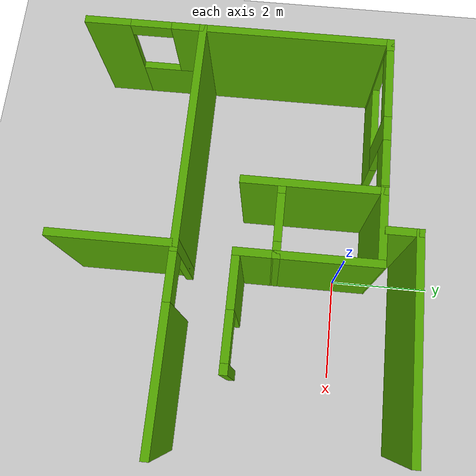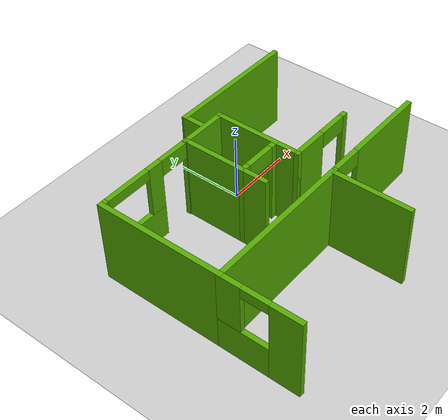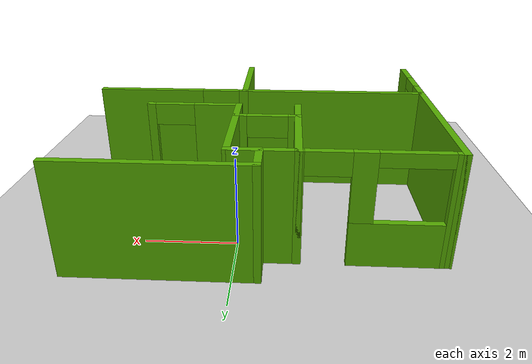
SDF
<sdf version="1.6">
 <world name="default">
  <model name="ground_plane">
   <static>1</static>
   <link name="link">
    <collision name="collision">
     <geometry><plane><normal>0 0 1</normal><size>100 100</size></plane></geometry>
     <surface><friction><ode><mu>100</mu><mu2>50</mu2></ode></friction></surface>
    </collision>
    <visual name="visual">
     <cast_shadows>0</cast_shadows>
     <geometry><plane><normal>0 0 1</normal><size>100 100</size></plane></geometry>
     <material>
      <script><uri>file://media/materials/scripts/gazebo.material</uri><name>Gazebo/Grey</name></script>
     </material>
    </visual>
   </link>
  </model>
  <model name="1floorHouse">
   <link name="Wall_295">
    <pose>-8.69021 0.434996 0 0 -0 1.5708</pose>
    <visual name="Wall_295_Visual_0">
     <pose>-0.748437 0 1.25 0 -0 0</pose>
     <geometry><box><size>0.903127 0.15 2.5</size></box></geometry>
     <material>
      <script><uri>file://media/materials/scripts/gazebo.material</uri><name>Gazebo/Grey</name></script>
      <ambient>0.333333 0.666667 0 1</ambient>
      <diffuse>0.7 0.7 0.7 1</diffuse>
      <specular>0.01 0.01 0.01 1</specular>
      <emissive>0 0 0 1</emissive>
     </material>
    </visual>
    <visual name="Wall_295_Visual_1">
     <pose>0.451563 0 0.5 0 -0 0</pose>
     <geometry><box><size>1.49687 0.15 1</size></box></geometry>
     <material>
      <script><uri>file://media/materials/scripts/gazebo.material</uri><name>Gazebo/Grey</name></script>
      <ambient>0.333333 0.666667 0 1</ambient>
      <diffuse>0.7 0.7 0.7 1</diffuse>
      <specular>0.01 0.01 0.01 1</specular>
      <emissive>0 0 0 1</emissive>
     </material>
    </visual>
    <visual name="Wall_295_Visual_2">
     <pose>0.851563 0 1.75 0 -0 0</pose>
     <geometry><box><size>0.696873 0.15 1.5</size></box></geometry>
     <material>
      <script><uri>file://media/materials/scripts/gazebo.material</uri><name>Gazebo/Grey</name></script>
      <ambient>0.333333 0.666667 0 1</ambient>
      <diffuse>0.7 0.7 0.7 1</diffuse>
      <specular>0.01 0.01 0.01 1</specular>
      <emissive>0 0 0 1</emissive>
     </material>
    </visual>
    <visual name="Wall_295_Visual_3">
     <pose>0.103127 0 2.35 0 -0 0</pose>
     <geometry><box><size>0.8 0.15 0.3</size></box></geometry>
     <material>
      <script><uri>file://media/materials/scripts/gazebo.material</uri><name>Gazebo/Grey</name></script>
      <ambient>0.333333 0.666667 0 1</ambient>
      <diffuse>0.7 0.7 0.7 1</diffuse>
      <specular>0.01 0.01 0.01 1</specular>
      <emissive>0 0 0 1</emissive>
     </material>
    </visual>
    <collision name="Wall_295_Collision_0">
     <pose>-0.748437 0 1.25 0 -0 0</pose>
     <geometry><box><size>0.903127 0.15 2.5</size></box></geometry>
     <surface>
      <friction>
       <ode><mu>1</mu><mu2>1</mu2><fdir1>0 0 0</fdir1><slip1>0</slip1><slip2>0</slip2></ode>
       <torsional>
        <coefficient>1</coefficient>
        <patch_radius>0</patch_radius>
        <surface_radius>0</surface_radius>
        <use_patch_radius>1</use_patch_radius>
        <ode><slip>0</slip></ode>
       </torsional>
      </friction>
      <bounce><restitution_coefficient>0</restitution_coefficient><threshold>1e+06</threshold></bounce>
      <contact>
       <collide_without_contact>0</collide_without_contact>
       <collide_without_contact_bitmask>1</collide_without_contact_bitmask>
       <collide_bitmask>1</collide_bitmask>
       <ode>
        <soft_cfm>0</soft_cfm>
        <soft_erp>0.2</soft_erp>
        <kp>1e+13</kp>
        <kd>1</kd>
        <max_vel>0.01</max_vel>
        <min_depth>0</min_depth>
       </ode>
       <bullet>
        <split_impulse>1</split_impulse>
        <split_impulse_penetration_threshold>-0.01</split_impulse_penetration_threshold>
        <soft_cfm>0</soft_cfm>
        <soft_erp>0.2</soft_erp>
        <kp>1e+13</kp>
        <kd>1</kd>
       </bullet>
      </contact>
     </surface>
    </collision>
    <collision name="Wall_295_Collision_1">
     <pose>0.451563 0 0.5 0 -0 0</pose>
     <geometry><box><size>1.49687 0.15 1</size></box></geometry>
     <surface>
      <friction>
       <ode><mu>1</mu><mu2>1</mu2><fdir1>0 0 0</fdir1><slip1>0</slip1><slip2>0</slip2></ode>
       <torsional>
        <coefficient>1</coefficient>
        <patch_radius>0</patch_radius>
        <surface_radius>0</surface_radius>
        <use_patch_radius>1</use_patch_radius>
        <ode><slip>0</slip></ode>
       </torsional>
      </friction>
      <bounce><restitution_coefficient>0</restitution_coefficient><threshold>1e+06</threshold></bounce>
      <contact>
       <collide_without_contact>0</collide_without_contact>
       <collide_without_contact_bitmask>1</collide_without_contact_bitmask>
       <collide_bitmask>1</collide_bitmask>
       <ode>
        <soft_cfm>0</soft_cfm>
        <soft_erp>0.2</soft_erp>
        <kp>1e+13</kp>
        <kd>1</kd>
        <max_vel>0.01</max_vel>
        <min_depth>0</min_depth>
       </ode>
       <bullet>
        <split_impulse>1</split_impulse>
        <split_impulse_penetration_threshold>-0.01</split_impulse_penetration_threshold>
        <soft_cfm>0</soft_cfm>
        <soft_erp>0.2</soft_erp>
        <kp>1e+13</kp>
        <kd>1</kd>
       </bullet>
      </contact>
     </surface>
    </collision>
    <collision name="Wall_295_Collision_2">
     <pose>0.851563 0 1.75 0 -0 0</pose>
     <geometry><box><size>0.696873 0.15 1.5</size></box></geometry>
     <surface>
      <friction>
       <ode><mu>1</mu><mu2>1</mu2><fdir1>0 0 0</fdir1><slip1>0</slip1><slip2>0</slip2></ode>
       <torsional>
        <coefficient>1</coefficient>
        <patch_radius>0</patch_radius>
        <surface_radius>0</surface_radius>
        <use_patch_radius>1</use_patch_radius>
        <ode><slip>0</slip></ode>
       </torsional>
      </friction>
      <bounce><restitution_coefficient>0</restitution_coefficient><threshold>1e+06</threshold></bounce>
      <contact>
       <collide_without_contact>0</collide_without_contact>
       <collide_without_contact_bitmask>1</collide_without_contact_bitmask>
       <collide_bitmask>1</collide_bitmask>
       <ode>
        <soft_cfm>0</soft_cfm>
        <soft_erp>0.2</soft_erp>
        <kp>1e+13</kp>
        <kd>1</kd>
        <max_vel>0.01</max_vel>
        <min_depth>0</min_depth>
       </ode>
       <bullet>
        <split_impulse>1</split_impulse>
        <split_impulse_penetration_threshold>-0.01</split_impulse_penetration_threshold>
        <soft_cfm>0</soft_cfm>
        <soft_erp>0.2</soft_erp>
        <kp>1e+13</kp>
        <kd>1</kd>
       </bullet>
      </contact>
     </surface>
    </collision>
    <collision name="Wall_295_Collision_3">
     <pose>0.103127 0 2.35 0 -0 0</pose>
     <geometry><box><size>0.8 0.15 0.3</size></box></geometry>
     <surface>
      <friction>
       <ode><mu>1</mu><mu2>1</mu2><fdir1>0 0 0</fdir1><slip1>0</slip1><slip2>0</slip2></ode>
       <torsional>
        <coefficient>1</coefficient>
        <patch_radius>0</patch_radius>
        <surface_radius>0</surface_radius>
        <use_patch_radius>1</use_patch_radius>
        <ode><slip>0</slip></ode>
       </torsional>
      </friction>
      <bounce><restitution_coefficient>0</restitution_coefficient><threshold>1e+06</threshold></bounce>
      <contact>
       <collide_without_contact>0</collide_without_contact>
       <collide_without_contact_bitmask>1</collide_without_contact_bitmask>
       <collide_bitmask>1</collide_bitmask>
       <ode>
        <soft_cfm>0</soft_cfm>
        <soft_erp>0.2</soft_erp>
        <kp>1e+13</kp>
        <kd>1</kd>
        <max_vel>0.01</max_vel>
        <min_depth>0</min_depth>
       </ode>
       <bullet>
        <split_impulse>1</split_impulse>
        <split_impulse_penetration_threshold>-0.01</split_impulse_penetration_threshold>
        <soft_cfm>0</soft_cfm>
        <soft_erp>0.2</soft_erp>
        <kp>1e+13</kp>
        <kd>1</kd>
       </bullet>
      </contact>
     </surface>
    </collision>
   </link>
   <link name="Wall_296">
    <pose>-6.5152 1.56 0 0 -0 0</pose>
    <visual name="Wall_296_Visual">
     <pose>0 0 1.25 0 -0 0</pose>
     <geometry><box><size>4.5 0.15 2.5</size></box></geometry>
     <material>
      <script><uri>file://media/materials/scripts/gazebo.material</uri><name>Gazebo/Grey</name></script>
      <ambient>0.333333 0.666667 0 1</ambient>
      <diffuse>0.7 0.7 0.7 1</diffuse>
      <specular>0.01 0.01 0.01 1</specular>
      <emissive>0 0 0 1</emissive>
     </material>
    </visual>
    <collision name="Wall_296_Collision">
     <pose>0 0 1.25 0 -0 0</pose>
     <geometry><box><size>4.5 0.15 2.5</size></box></geometry>
     <surface>
      <friction>
       <ode><mu>1</mu><mu2>1</mu2><fdir1>0 0 0</fdir1><slip1>0</slip1><slip2>0</slip2></ode>
       <torsional>
        <coefficient>1</coefficient>
        <patch_radius>0</patch_radius>
        <surface_radius>0</surface_radius>
        <use_patch_radius>1</use_patch_radius>
        <ode><slip>0</slip></ode>
       </torsional>
      </friction>
      <bounce><restitution_coefficient>0</restitution_coefficient><threshold>1e+06</threshold></bounce>
      <contact>
       <collide_without_contact>0</collide_without_contact>
       <collide_without_contact_bitmask>1</collide_without_contact_bitmask>
       <collide_bitmask>1</collide_bitmask>
       <ode>
        <soft_cfm>0</soft_cfm>
        <soft_erp>0.2</soft_erp>
        <kp>1e+13</kp>
        <kd>1</kd>
        <max_vel>0.01</max_vel>
        <min_depth>0</min_depth>
       </ode>
       <bullet>
        <split_impulse>1</split_impulse>
        <split_impulse_penetration_threshold>-0.01</split_impulse_penetration_threshold>
        <soft_cfm>0</soft_cfm>
        <soft_erp>0.2</soft_erp>
        <kp>1e+13</kp>
        <kd>1</kd>
       </bullet>
      </contact>
     </surface>
    </collision>
   </link>
   <link name="Wall_297">
    <pose>-4.34021 0.434996 0 0 0 -1.5708</pose>
    <visual name="Wall_297_Visual">
     <pose>0 0 1.25 0 -0 0</pose>
     <geometry><box><size>2.4 0.15 2.5</size></box></geometry>
     <material>
      <script><uri>file://media/materials/scripts/gazebo.material</uri><name>Gazebo/Grey</name></script>
      <ambient>0.333333 0.666667 0 1</ambient>
      <diffuse>0.7 0.7 0.7 1</diffuse>
      <specular>0.01 0.01 0.01 1</specular>
      <emissive>0 0 0 1</emissive>
     </material>
    </visual>
    <collision name="Wall_297_Collision">
     <pose>0 0 1.25 0 -0 0</pose>
     <geometry><box><size>2.4 0.15 2.5</size></box></geometry>
     <surface>
      <friction>
       <ode><mu>1</mu><mu2>1</mu2><fdir1>0 0 0</fdir1><slip1>0</slip1><slip2>0</slip2></ode>
       <torsional>
        <coefficient>1</coefficient>
        <patch_radius>0</patch_radius>
        <surface_radius>0</surface_radius>
        <use_patch_radius>1</use_patch_radius>
        <ode><slip>0</slip></ode>
       </torsional>
      </friction>
      <bounce><restitution_coefficient>0</restitution_coefficient><threshold>1e+06</threshold></bounce>
      <contact>
       <collide_without_contact>0</collide_without_contact>
       <collide_without_contact_bitmask>1</collide_without_contact_bitmask>
       <collide_bitmask>1</collide_bitmask>
       <ode>
        <soft_cfm>0</soft_cfm>
        <soft_erp>0.2</soft_erp>
        <kp>1e+13</kp>
        <kd>1</kd>
        <max_vel>0.01</max_vel>
        <min_depth>0</min_depth>
       </ode>
       <bullet>
        <split_impulse>1</split_impulse>
        <split_impulse_penetration_threshold>-0.01</split_impulse_penetration_threshold>
        <soft_cfm>0</soft_cfm>
        <soft_erp>0.2</soft_erp>
        <kp>1e+13</kp>
        <kd>1</kd>
       </bullet>
      </contact>
     </surface>
    </collision>
   </link>
   <link name="Wall_299">
    <pose>-2.565 1.56 0 0 -0 0</pose>
    <visual name="Wall_299_Visual_0">
     <pose>-1.73627 0 1.25 0 -0 0</pose>
     <geometry><box><size>0.227865 0.15 2.5</size></box></geometry>
     <material>
      <script><uri>file://media/materials/scripts/gazebo.material</uri><name>Gazebo/Grey</name></script>
      <ambient>0.333333 0.666667 0 1</ambient>
      <diffuse>0.7 0.7 0.7 1</diffuse>
      <specular>0.01 0.01 0.01 1</specular>
      <emissive>0 0 0 1</emissive>
     </material>
    </visual>
    <visual name="Wall_299_Visual_1">
     <pose>0.563933 0 1.25 0 -0 0</pose>
     <geometry><box><size>2.57254 0.15 2.5</size></box></geometry>
     <material>
      <script><uri>file://media/materials/scripts/gazebo.material</uri><name>Gazebo/Grey</name></script>
      <ambient>0.333333 0.666667 0 1</ambient>
      <diffuse>0.7 0.7 0.7 1</diffuse>
      <specular>0.01 0.01 0.01 1</specular>
      <emissive>0 0 0 1</emissive>
     </material>
    </visual>
    <visual name="Wall_299_Visual_2">
     <pose>-1.17234 0 2.25 0 -0 0</pose>
     <geometry><box><size>0.9 0.15 0.5</size></box></geometry>
     <material>
      <script><uri>file://media/materials/scripts/gazebo.material</uri><name>Gazebo/Grey</name></script>
      <ambient>0.333333 0.666667 0 1</ambient>
      <diffuse>0.7 0.7 0.7 1</diffuse>
      <specular>0.01 0.01 0.01 1</specular>
      <emissive>0 0 0 1</emissive>
     </material>
    </visual>
    <collision name="Wall_299_Collision_0">
     <pose>-1.73627 0 1.25 0 -0 0</pose>
     <geometry><box><size>0.227865 0.15 2.5</size></box></geometry>
     <surface>
      <friction>
       <ode><mu>1</mu><mu2>1</mu2><fdir1>0 0 0</fdir1><slip1>0</slip1><slip2>0</slip2></ode>
       <torsional>
        <coefficient>1</coefficient>
        <patch_radius>0</patch_radius>
        <surface_radius>0</surface_radius>
        <use_patch_radius>1</use_patch_radius>
        <ode><slip>0</slip></ode>
       </torsional>
      </friction>
      <bounce><restitution_coefficient>0</restitution_coefficient><threshold>1e+06</threshold></bounce>
      <contact>
       <collide_without_contact>0</collide_without_contact>
       <collide_without_contact_bitmask>1</collide_without_contact_bitmask>
       <collide_bitmask>1</collide_bitmask>
       <ode>
        <soft_cfm>0</soft_cfm>
        <soft_erp>0.2</soft_erp>
        <kp>1e+13</kp>
        <kd>1</kd>
        <max_vel>0.01</max_vel>
        <min_depth>0</min_depth>
       </ode>
       <bullet>
        <split_impulse>1</split_impulse>
        <split_impulse_penetration_threshold>-0.01</split_impulse_penetration_threshold>
        <soft_cfm>0</soft_cfm>
        <soft_erp>0.2</soft_erp>
        <kp>1e+13</kp>
        <kd>1</kd>
       </bullet>
      </contact>
     </surface>
    </collision>
    <collision name="Wall_299_Collision_1">
     <pose>0.563933 0 1.25 0 -0 0</pose>
     <geometry><box><size>2.57254 0.15 2.5</size></box></geometry>
     <surface>
      <friction>
       <ode><mu>1</mu><mu2>1</mu2><fdir1>0 0 0</fdir1><slip1>0</slip1><slip2>0</slip2></ode>
       <torsional>
        <coefficient>1</coefficient>
        <patch_radius>0</patch_radius>
        <surface_radius>0</surface_radius>
        <use_patch_radius>1</use_patch_radius>
        <ode><slip>0</slip></ode>
       </torsional>
      </friction>
      <bounce><restitution_coefficient>0</restitution_coefficient><threshold>1e+06</threshold></bounce>
      <contact>
       <collide_without_contact>0</collide_without_contact>
       <collide_without_contact_bitmask>1</collide_without_contact_bitmask>
       <collide_bitmask>1</collide_bitmask>
       <ode>
        <soft_cfm>0</soft_cfm>
        <soft_erp>0.2</soft_erp>
        <kp>1e+13</kp>
        <kd>1</kd>
        <max_vel>0.01</max_vel>
        <min_depth>0</min_depth>
       </ode>
       <bullet>
        <split_impulse>1</split_impulse>
        <split_impulse_penetration_threshold>-0.01</split_impulse_penetration_threshold>
        <soft_cfm>0</soft_cfm>
        <soft_erp>0.2</soft_erp>
        <kp>1e+13</kp>
        <kd>1</kd>
       </bullet>
      </contact>
     </surface>
    </collision>
    <collision name="Wall_299_Collision_2">
     <pose>-1.17234 0 2.25 0 -0 0</pose>
     <geometry><box><size>0.9 0.15 0.5</size></box></geometry>
     <surface>
      <friction>
       <ode><mu>1</mu><mu2>1</mu2><fdir1>0 0 0</fdir1><slip1>0</slip1><slip2>0</slip2></ode>
       <torsional>
        <coefficient>1</coefficient>
        <patch_radius>0</patch_radius>
        <surface_radius>0</surface_radius>
        <use_patch_radius>1</use_patch_radius>
        <ode><slip>0</slip></ode>
       </torsional>
      </friction>
      <bounce><restitution_coefficient>0</restitution_coefficient><threshold>1e+06</threshold></bounce>
      <contact>
       <collide_without_contact>0</collide_without_contact>
       <collide_without_contact_bitmask>1</collide_without_contact_bitmask>
       <collide_bitmask>1</collide_bitmask>
       <ode>
        <soft_cfm>0</soft_cfm>
        <soft_erp>0.2</soft_erp>
        <kp>1e+13</kp>
        <kd>1</kd>
        <max_vel>0.01</max_vel>
        <min_depth>0</min_depth>
       </ode>
       <bullet>
        <split_impulse>1</split_impulse>
        <split_impulse_penetration_threshold>-0.01</split_impulse_penetration_threshold>
        <soft_cfm>0</soft_cfm>
        <soft_erp>0.2</soft_erp>
        <kp>1e+13</kp>
        <kd>1</kd>
       </bullet>
      </contact>
     </surface>
    </collision>
   </link>
   <link name="Wall_303">
    <pose>-8.69021 3.385 0 0 -0 1.5708</pose>
    <visual name="Wall_303_Visual">
     <pose>0 0 1.25 0 -0 0</pose>
     <geometry><box><size>3.8 0.15 2.5</size></box></geometry>
     <material>
      <script><uri>file://media/materials/scripts/gazebo.material</uri><name>Gazebo/Grey</name></script>
      <ambient>0.333333 0.666667 0 1</ambient>
      <diffuse>0.7 0.7 0.7 1</diffuse>
      <specular>0.01 0.01 0.01 1</specular>
      <emissive>0 0 0 1</emissive>
     </material>
    </visual>
    <collision name="Wall_303_Collision">
     <pose>0 0 1.25 0 -0 0</pose>
     <geometry><box><size>3.8 0.15 2.5</size></box></geometry>
     <surface>
      <friction>
       <ode><mu>1</mu><mu2>1</mu2><fdir1>0 0 0</fdir1><slip1>0</slip1><slip2>0</slip2></ode>
       <torsional>
        <coefficient>1</coefficient>
        <patch_radius>0</patch_radius>
        <surface_radius>0</surface_radius>
        <use_patch_radius>1</use_patch_radius>
        <ode><slip>0</slip></ode>
       </torsional>
      </friction>
      <bounce><restitution_coefficient>0</restitution_coefficient><threshold>1e+06</threshold></bounce>
      <contact>
       <collide_without_contact>0</collide_without_contact>
       <collide_without_contact_bitmask>1</collide_without_contact_bitmask>
       <collide_bitmask>1</collide_bitmask>
       <ode>
        <soft_cfm>0</soft_cfm>
        <soft_erp>0.2</soft_erp>
        <kp>1e+13</kp>
        <kd>1</kd>
        <max_vel>0.01</max_vel>
        <min_depth>0</min_depth>
       </ode>
       <bullet>
        <split_impulse>1</split_impulse>
        <split_impulse_penetration_threshold>-0.01</split_impulse_penetration_threshold>
        <soft_cfm>0</soft_cfm>
        <soft_erp>0.2</soft_erp>
        <kp>1e+13</kp>
        <kd>1</kd>
       </bullet>
      </contact>
     </surface>
    </collision>
   </link>
   <link name="Wall_304">
    <pose>-7.16521 5.21 0 0 -0 0</pose>
    <visual name="Wall_304_Visual_0">
     <pose>-1.47576 0 1.25 0 -0 0</pose>
     <geometry><box><size>0.248475 0.15 2.5</size></box></geometry>
     <material>
      <script><uri>file://media/materials/scripts/gazebo.material</uri><name>Gazebo/Grey</name></script>
      <ambient>0.333333 0.666667 0 1</ambient>
      <diffuse>0.7 0.7 0.7 1</diffuse>
      <specular>0.01 0.01 0.01 1</specular>
      <emissive>0 0 0 1</emissive>
     </material>
    </visual>
    <visual name="Wall_304_Visual_2">
     <pose>-0.414623 0 0.5 0 -0 0</pose>
     <geometry><box><size>1.8738 0.15 1</size></box></geometry>
     <material>
      <script><uri>file://media/materials/scripts/gazebo.material</uri><name>Gazebo/Grey</name></script>
      <ambient>0.333333 0.666667 0 1</ambient>
      <diffuse>0.7 0.7 0.7 1</diffuse>
      <specular>0.01 0.01 0.01 1</specular>
      <emissive>0 0 0 1</emissive>
     </material>
    </visual>
    <visual name="Wall_304_Visual_1">
     <pose>1.51114 0 1.25 0 -0 0</pose>
     <geometry><box><size>0.177722 0.15 2.5</size></box></geometry>
     <material>
      <script><uri>file://media/materials/scripts/gazebo.material</uri><name>Gazebo/Grey</name></script>
      <ambient>0.333333 0.666667 0 1</ambient>
      <diffuse>0.7 0.7 0.7 1</diffuse>
      <specular>0.01 0.01 0.01 1</specular>
      <emissive>0 0 0 1</emissive>
     </material>
    </visual>
    <visual name="Wall_304_Visual_3">
     <pose>0.285377 0 1.75 0 -0 0</pose>
     <geometry><box><size>0.473803 0.15 1.5</size></box></geometry>
     <material>
      <script><uri>file://media/materials/scripts/gazebo.material</uri><name>Gazebo/Grey</name></script>
      <ambient>0.333333 0.666667 0 1</ambient>
      <diffuse>0.7 0.7 0.7 1</diffuse>
      <specular>0.01 0.01 0.01 1</specular>
      <emissive>0 0 0 1</emissive>
     </material>
    </visual>
    <visual name="Wall_304_Visual_4">
     <pose>0.972278 0 2.25 0 -0 0</pose>
     <geometry><box><size>0.9 0.15 0.5</size></box></geometry>
     <material>
      <script><uri>file://media/materials/scripts/gazebo.material</uri><name>Gazebo/Grey</name></script>
      <ambient>0.333333 0.666667 0 1</ambient>
      <diffuse>0.7 0.7 0.7 1</diffuse>
      <specular>0.01 0.01 0.01 1</specular>
      <emissive>0 0 0 1</emissive>
     </material>
    </visual>
    <visual name="Wall_304_Visual_5">
     <pose>-0.651525 0 2.35 0 -0 0</pose>
     <geometry><box><size>1.4 0.15 0.3</size></box></geometry>
     <material>
      <script><uri>file://media/materials/scripts/gazebo.material</uri><name>Gazebo/Grey</name></script>
      <ambient>0.333333 0.666667 0 1</ambient>
      <diffuse>0.7 0.7 0.7 1</diffuse>
      <specular>0.01 0.01 0.01 1</specular>
      <emissive>0 0 0 1</emissive>
     </material>
    </visual>
    <collision name="Wall_304_Collision_0">
     <pose>-1.47576 0 1.25 0 -0 0</pose>
     <geometry><box><size>0.248475 0.15 2.5</size></box></geometry>
     <surface>
      <friction>
       <ode><mu>1</mu><mu2>1</mu2><fdir1>0 0 0</fdir1><slip1>0</slip1><slip2>0</slip2></ode>
       <torsional>
        <coefficient>1</coefficient>
        <patch_radius>0</patch_radius>
        <surface_radius>0</surface_radius>
        <use_patch_radius>1</use_patch_radius>
        <ode><slip>0</slip></ode>
       </torsional>
      </friction>
      <bounce><restitution_coefficient>0</restitution_coefficient><threshold>1e+06</threshold></bounce>
      <contact>
       <collide_without_contact>0</collide_without_contact>
       <collide_without_contact_bitmask>1</collide_without_contact_bitmask>
       <collide_bitmask>1</collide_bitmask>
       <ode>
        <soft_cfm>0</soft_cfm>
        <soft_erp>0.2</soft_erp>
        <kp>1e+13</kp>
        <kd>1</kd>
        <max_vel>0.01</max_vel>
        <min_depth>0</min_depth>
       </ode>
       <bullet>
        <split_impulse>1</split_impulse>
        <split_impulse_penetration_threshold>-0.01</split_impulse_penetration_threshold>
        <soft_cfm>0</soft_cfm>
        <soft_erp>0.2</soft_erp>
        <kp>1e+13</kp>
        <kd>1</kd>
       </bullet>
      </contact>
     </surface>
    </collision>
    <collision name="Wall_304_Collision_1">
     <pose>1.51114 0 1.25 0 -0 0</pose>
     <geometry><box><size>0.177722 0.15 2.5</size></box></geometry>
     <surface>
      <friction>
       <ode><mu>1</mu><mu2>1</mu2><fdir1>0 0 0</fdir1><slip1>0</slip1><slip2>0</slip2></ode>
       <torsional>
        <coefficient>1</coefficient>
        <patch_radius>0</patch_radius>
        <surface_radius>0</surface_radius>
        <use_patch_radius>1</use_patch_radius>
        <ode><slip>0</slip></ode>
       </torsional>
      </friction>
      <bounce><restitution_coefficient>0</restitution_coefficient><threshold>1e+06</threshold></bounce>
      <contact>
       <collide_without_contact>0</collide_without_contact>
       <collide_without_contact_bitmask>1</collide_without_contact_bitmask>
       <collide_bitmask>1</collide_bitmask>
       <ode>
        <soft_cfm>0</soft_cfm>
        <soft_erp>0.2</soft_erp>
        <kp>1e+13</kp>
        <kd>1</kd>
        <max_vel>0.01</max_vel>
        <min_depth>0</min_depth>
       </ode>
       <bullet>
        <split_impulse>1</split_impulse>
        <split_impulse_penetration_threshold>-0.01</split_impulse_penetration_threshold>
        <soft_cfm>0</soft_cfm>
        <soft_erp>0.2</soft_erp>
        <kp>1e+13</kp>
        <kd>1</kd>
       </bullet>
      </contact>
     </surface>
    </collision>
    <collision name="Wall_304_Collision_2">
     <pose>-0.414623 0 0.5 0 -0 0</pose>
     <geometry><box><size>1.8738 0.15 1</size></box></geometry>
     <surface>
      <friction>
       <ode><mu>1</mu><mu2>1</mu2><fdir1>0 0 0</fdir1><slip1>0</slip1><slip2>0</slip2></ode>
       <torsional>
        <coefficient>1</coefficient>
        <patch_radius>0</patch_radius>
        <surface_radius>0</surface_radius>
        <use_patch_radius>1</use_patch_radius>
        <ode><slip>0</slip></ode>
       </torsional>
      </friction>
      <bounce><restitution_coefficient>0</restitution_coefficient><threshold>1e+06</threshold></bounce>
      <contact>
       <collide_without_contact>0</collide_without_contact>
       <collide_without_contact_bitmask>1</collide_without_contact_bitmask>
       <collide_bitmask>1</collide_bitmask>
       <ode>
        <soft_cfm>0</soft_cfm>
        <soft_erp>0.2</soft_erp>
        <kp>1e+13</kp>
        <kd>1</kd>
        <max_vel>0.01</max_vel>
        <min_depth>0</min_depth>
       </ode>
       <bullet>
        <split_impulse>1</split_impulse>
        <split_impulse_penetration_threshold>-0.01</split_impulse_penetration_threshold>
        <soft_cfm>0</soft_cfm>
        <soft_erp>0.2</soft_erp>
        <kp>1e+13</kp>
        <kd>1</kd>
       </bullet>
      </contact>
     </surface>
    </collision>
    <collision name="Wall_304_Collision_3">
     <pose>0.285377 0 1.75 0 -0 0</pose>
     <geometry><box><size>0.473803 0.15 1.5</size></box></geometry>
     <surface>
      <friction>
       <ode><mu>1</mu><mu2>1</mu2><fdir1>0 0 0</fdir1><slip1>0</slip1><slip2>0</slip2></ode>
       <torsional>
        <coefficient>1</coefficient>
        <patch_radius>0</patch_radius>
        <surface_radius>0</surface_radius>
        <use_patch_radius>1</use_patch_radius>
        <ode><slip>0</slip></ode>
       </torsional>
      </friction>
      <bounce><restitution_coefficient>0</restitution_coefficient><threshold>1e+06</threshold></bounce>
      <contact>
       <collide_without_contact>0</collide_without_contact>
       <collide_without_contact_bitmask>1</collide_without_contact_bitmask>
       <collide_bitmask>1</collide_bitmask>
       <ode>
        <soft_cfm>0</soft_cfm>
        <soft_erp>0.2</soft_erp>
        <kp>1e+13</kp>
        <kd>1</kd>
        <max_vel>0.01</max_vel>
        <min_depth>0</min_depth>
       </ode>
       <bullet>
        <split_impulse>1</split_impulse>
        <split_impulse_penetration_threshold>-0.01</split_impulse_penetration_threshold>
        <soft_cfm>0</soft_cfm>
        <soft_erp>0.2</soft_erp>
        <kp>1e+13</kp>
        <kd>1</kd>
       </bullet>
      </contact>
     </surface>
    </collision>
    <collision name="Wall_304_Collision_4">
     <pose>0.972278 0 2.25 0 -0 0</pose>
     <geometry><box><size>0.9 0.15 0.5</size></box></geometry>
     <surface>
      <friction>
       <ode><mu>1</mu><mu2>1</mu2><fdir1>0 0 0</fdir1><slip1>0</slip1><slip2>0</slip2></ode>
       <torsional>
        <coefficient>1</coefficient>
        <patch_radius>0</patch_radius>
        <surface_radius>0</surface_radius>
        <use_patch_radius>1</use_patch_radius>
        <ode><slip>0</slip></ode>
       </torsional>
      </friction>
      <bounce><restitution_coefficient>0</restitution_coefficient><threshold>1e+06</threshold></bounce>
      <contact>
       <collide_without_contact>0</collide_without_contact>
       <collide_without_contact_bitmask>1</collide_without_contact_bitmask>
       <collide_bitmask>1</collide_bitmask>
       <ode>
        <soft_cfm>0</soft_cfm>
        <soft_erp>0.2</soft_erp>
        <kp>1e+13</kp>
        <kd>1</kd>
        <max_vel>0.01</max_vel>
        <min_depth>0</min_depth>
       </ode>
       <bullet>
        <split_impulse>1</split_impulse>
        <split_impulse_penetration_threshold>-0.01</split_impulse_penetration_threshold>
        <soft_cfm>0</soft_cfm>
        <soft_erp>0.2</soft_erp>
        <kp>1e+13</kp>
        <kd>1</kd>
       </bullet>
      </contact>
     </surface>
    </collision>
    <collision name="Wall_304_Collision_5">
     <pose>-0.651525 0 2.35 0 -0 0</pose>
     <geometry><box><size>1.4 0.15 0.3</size></box></geometry>
     <surface>
      <friction>
       <ode><mu>1</mu><mu2>1</mu2><fdir1>0 0 0</fdir1><slip1>0</slip1><slip2>0</slip2></ode>
       <torsional>
        <coefficient>1</coefficient>
        <patch_radius>0</patch_radius>
        <surface_radius>0</surface_radius>
        <use_patch_radius>1</use_patch_radius>
        <ode><slip>0</slip></ode>
       </torsional>
      </friction>
      <bounce><restitution_coefficient>0</restitution_coefficient><threshold>1e+06</threshold></bounce>
      <contact>
       <collide_without_contact>0</collide_without_contact>
       <collide_without_contact_bitmask>1</collide_without_contact_bitmask>
       <collide_bitmask>1</collide_bitmask>
       <ode>
        <soft_cfm>0</soft_cfm>
        <soft_erp>0.2</soft_erp>
        <kp>1e+13</kp>
        <kd>1</kd>
        <max_vel>0.01</max_vel>
        <min_depth>0</min_depth>
       </ode>
       <bullet>
        <split_impulse>1</split_impulse>
        <split_impulse_penetration_threshold>-0.01</split_impulse_penetration_threshold>
        <soft_cfm>0</soft_cfm>
        <soft_erp>0.2</soft_erp>
        <kp>1e+13</kp>
        <kd>1</kd>
       </bullet>
      </contact>
     </surface>
    </collision>
   </link>
   <link name="Wall_305">
    <pose>-5.6402 3.935 0 0 0 -1.5708</pose>
    <visual name="Wall_305_Visual">
     <pose>0 0 1.25 0 -0 0</pose>
     <geometry><box><size>2.7 0.15 2.5</size></box></geometry>
     <material>
      <script><uri>file://media/materials/scripts/gazebo.material</uri><name>Gazebo/Grey</name></script>
      <ambient>0.333333 0.666667 0 1</ambient>
      <diffuse>0.7 0.7 0.7 1</diffuse>
      <specular>0.01 0.01 0.01 1</specular>
      <emissive>0 0 0 1</emissive>
     </material>
    </visual>
    <collision name="Wall_305_Collision">
     <pose>0 0 1.25 0 -0 0</pose>
     <geometry><box><size>2.7 0.15 2.5</size></box></geometry>
     <surface>
      <friction>
       <ode><mu>1</mu><mu2>1</mu2><fdir1>0 0 0</fdir1><slip1>0</slip1><slip2>0</slip2></ode>
       <torsional>
        <coefficient>1</coefficient>
        <patch_radius>0</patch_radius>
        <surface_radius>0</surface_radius>
        <use_patch_radius>1</use_patch_radius>
        <ode><slip>0</slip></ode>
       </torsional>
      </friction>
      <bounce><restitution_coefficient>0</restitution_coefficient><threshold>1e+06</threshold></bounce>
      <contact>
       <collide_without_contact>0</collide_without_contact>
       <collide_without_contact_bitmask>1</collide_without_contact_bitmask>
       <collide_bitmask>1</collide_bitmask>
       <ode>
        <soft_cfm>0</soft_cfm>
        <soft_erp>0.2</soft_erp>
        <kp>1e+13</kp>
        <kd>1</kd>
        <max_vel>0.01</max_vel>
        <min_depth>0</min_depth>
       </ode>
       <bullet>
        <split_impulse>1</split_impulse>
        <split_impulse_penetration_threshold>-0.01</split_impulse_penetration_threshold>
        <soft_cfm>0</soft_cfm>
        <soft_erp>0.2</soft_erp>
        <kp>1e+13</kp>
        <kd>1</kd>
       </bullet>
      </contact>
     </surface>
    </collision>
   </link>
   <link name="Wall_306">
    <pose>-4.96521 5.21 0 0 -0 0</pose>
    <visual name="Wall_306_Visual">
     <pose>0 0 1.25 0 -0 0</pose>
     <geometry><box><size>1.5 0.15 2.5</size></box></geometry>
     <material>
      <script><uri>file://media/materials/scripts/gazebo.material</uri><name>Gazebo/Grey</name></script>
      <ambient>0.333333 0.666667 0 1</ambient>
      <diffuse>0.7 0.7 0.7 1</diffuse>
      <specular>0.01 0.01 0.01 1</specular>
      <emissive>0 0 0 1</emissive>
     </material>
    </visual>
    <collision name="Wall_306_Collision">
     <pose>0 0 1.25 0 -0 0</pose>
     <geometry><box><size>1.5 0.15 2.5</size></box></geometry>
     <surface>
      <friction>
       <ode><mu>1</mu><mu2>1</mu2><fdir1>0 0 0</fdir1><slip1>0</slip1><slip2>0</slip2></ode>
       <torsional>
        <coefficient>1</coefficient>
        <patch_radius>0</patch_radius>
        <surface_radius>0</surface_radius>
        <use_patch_radius>1</use_patch_radius>
        <ode><slip>0</slip></ode>
       </torsional>
      </friction>
      <bounce><restitution_coefficient>0</restitution_coefficient><threshold>1e+06</threshold></bounce>
      <contact>
       <collide_without_contact>0</collide_without_contact>
       <collide_without_contact_bitmask>1</collide_without_contact_bitmask>
       <collide_bitmask>1</collide_bitmask>
       <ode>
        <soft_cfm>0</soft_cfm>
        <soft_erp>0.2</soft_erp>
        <kp>1e+13</kp>
        <kd>1</kd>
        <max_vel>0.01</max_vel>
        <min_depth>0</min_depth>
       </ode>
       <bullet>
        <split_impulse>1</split_impulse>
        <split_impulse_penetration_threshold>-0.01</split_impulse_penetration_threshold>
        <soft_cfm>0</soft_cfm>
        <soft_erp>0.2</soft_erp>
        <kp>1e+13</kp>
        <kd>1</kd>
       </bullet>
      </contact>
     </surface>
    </collision>
   </link>
   <link name="Wall_307">
    <pose>-4.29 4.285 0 0 0 -1.57058</pose>
    <visual name="Wall_307_Visual">
     <pose>0 0 1.25 0 -0 0</pose>
     <geometry><box><size>2 0.15 2.5</size></box></geometry>
     <material>
      <script><uri>file://media/materials/scripts/gazebo.material</uri><name>Gazebo/Grey</name></script>
      <ambient>0.333333 0.666667 0 1</ambient>
      <diffuse>0.7 0.7 0.7 1</diffuse>
      <specular>0.01 0.01 0.01 1</specular>
      <emissive>0 0 0 1</emissive>
     </material>
    </visual>
    <collision name="Wall_307_Collision">
     <pose>0 0 1.25 0 -0 0</pose>
     <geometry><box><size>2 0.15 2.5</size></box></geometry>
     <surface>
      <friction>
       <ode><mu>1</mu><mu2>1</mu2><fdir1>0 0 0</fdir1><slip1>0</slip1><slip2>0</slip2></ode>
       <torsional>
        <coefficient>1</coefficient>
        <patch_radius>0</patch_radius>
        <surface_radius>0</surface_radius>
        <use_patch_radius>1</use_patch_radius>
        <ode><slip>0</slip></ode>
       </torsional>
      </friction>
      <bounce><restitution_coefficient>0</restitution_coefficient><threshold>1e+06</threshold></bounce>
      <contact>
       <collide_without_contact>0</collide_without_contact>
       <collide_without_contact_bitmask>1</collide_without_contact_bitmask>
       <collide_bitmask>1</collide_bitmask>
       <ode>
        <soft_cfm>0</soft_cfm>
        <soft_erp>0.2</soft_erp>
        <kp>1e+13</kp>
        <kd>1</kd>
        <max_vel>0.01</max_vel>
        <min_depth>0</min_depth>
       </ode>
       <bullet>
        <split_impulse>1</split_impulse>
        <split_impulse_penetration_threshold>-0.01</split_impulse_penetration_threshold>
        <soft_cfm>0</soft_cfm>
        <soft_erp>0.2</soft_erp>
        <kp>1e+13</kp>
        <kd>1</kd>
       </bullet>
      </contact>
     </surface>
    </collision>
   </link>
   <link name="Wall_308">
    <pose>-4.965 3.36 0 0 -0 3.14159</pose>
    <visual name="Wall_308_Visual_0">
     <pose>-0.593035 0 1.25 0 -0 0</pose>
     <geometry><box><size>0.314339 0.15 2.5</size></box></geometry>
     <material>
      <script><uri>file://media/materials/scripts/gazebo.material</uri><name>Gazebo/Grey</name></script>
      <ambient>0.333333 0.666667 0 1</ambient>
      <diffuse>0.7 0.7 0.7 1</diffuse>
      <specular>0.01 0.01 0.01 1</specular>
      <emissive>0 0 0 1</emissive>
     </material>
    </visual>
    <visual name="Wall_308_Visual_1">
     <pose>0.607169 0 1.25 0 -0 0</pose>
     <geometry><box><size>0.286071 0.15 2.5</size></box></geometry>
     <material>
      <script><uri>file://media/materials/scripts/gazebo.material</uri><name>Gazebo/Grey</name></script>
      <ambient>0.333333 0.666667 0 1</ambient>
      <diffuse>0.7 0.7 0.7 1</diffuse>
      <specular>0.01 0.01 0.01 1</specular>
      <emissive>0 0 0 1</emissive>
     </material>
    </visual>
    <visual name="Wall_308_Visual_2">
     <pose>0.014134 0 2.25 0 -0 0</pose>
     <geometry><box><size>0.9 0.15 0.5</size></box></geometry>
     <material>
      <script><uri>file://media/materials/scripts/gazebo.material</uri><name>Gazebo/Grey</name></script>
      <ambient>0.333333 0.666667 0 1</ambient>
      <diffuse>0.7 0.7 0.7 1</diffuse>
      <specular>0.01 0.01 0.01 1</specular>
      <emissive>0 0 0 1</emissive>
     </material>
    </visual>
    <collision name="Wall_308_Collision_0">
     <pose>-0.593035 0 1.25 0 -0 0</pose>
     <geometry><box><size>0.314339 0.15 2.5</size></box></geometry>
     <surface>
      <friction>
       <ode><mu>1</mu><mu2>1</mu2><fdir1>0 0 0</fdir1><slip1>0</slip1><slip2>0</slip2></ode>
       <torsional>
        <coefficient>1</coefficient>
        <patch_radius>0</patch_radius>
        <surface_radius>0</surface_radius>
        <use_patch_radius>1</use_patch_radius>
        <ode><slip>0</slip></ode>
       </torsional>
      </friction>
      <bounce><restitution_coefficient>0</restitution_coefficient><threshold>1e+06</threshold></bounce>
      <contact>
       <collide_without_contact>0</collide_without_contact>
       <collide_without_contact_bitmask>1</collide_without_contact_bitmask>
       <collide_bitmask>1</collide_bitmask>
       <ode>
        <soft_cfm>0</soft_cfm>
        <soft_erp>0.2</soft_erp>
        <kp>1e+13</kp>
        <kd>1</kd>
        <max_vel>0.01</max_vel>
        <min_depth>0</min_depth>
       </ode>
       <bullet>
        <split_impulse>1</split_impulse>
        <split_impulse_penetration_threshold>-0.01</split_impulse_penetration_threshold>
        <soft_cfm>0</soft_cfm>
        <soft_erp>0.2</soft_erp>
        <kp>1e+13</kp>
        <kd>1</kd>
       </bullet>
      </contact>
     </surface>
    </collision>
    <collision name="Wall_308_Collision_1">
     <pose>0.607169 0 1.25 0 -0 0</pose>
     <geometry><box><size>0.286071 0.15 2.5</size></box></geometry>
     <surface>
      <friction>
       <ode><mu>1</mu><mu2>1</mu2><fdir1>0 0 0</fdir1><slip1>0</slip1><slip2>0</slip2></ode>
       <torsional>
        <coefficient>1</coefficient>
        <patch_radius>0</patch_radius>
        <surface_radius>0</surface_radius>
        <use_patch_radius>1</use_patch_radius>
        <ode><slip>0</slip></ode>
       </torsional>
      </friction>
      <bounce><restitution_coefficient>0</restitution_coefficient><threshold>1e+06</threshold></bounce>
      <contact>
       <collide_without_contact>0</collide_without_contact>
       <collide_without_contact_bitmask>1</collide_without_contact_bitmask>
       <collide_bitmask>1</collide_bitmask>
       <ode>
        <soft_cfm>0</soft_cfm>
        <soft_erp>0.2</soft_erp>
        <kp>1e+13</kp>
        <kd>1</kd>
        <max_vel>0.01</max_vel>
        <min_depth>0</min_depth>
       </ode>
       <bullet>
        <split_impulse>1</split_impulse>
        <split_impulse_penetration_threshold>-0.01</split_impulse_penetration_threshold>
        <soft_cfm>0</soft_cfm>
        <soft_erp>0.2</soft_erp>
        <kp>1e+13</kp>
        <kd>1</kd>
       </bullet>
      </contact>
     </surface>
    </collision>
    <collision name="Wall_308_Collision_2">
     <pose>0.014134 0 2.25 0 -0 0</pose>
     <geometry><box><size>0.9 0.15 0.5</size></box></geometry>
     <surface>
      <friction>
       <ode><mu>1</mu><mu2>1</mu2><fdir1>0 0 0</fdir1><slip1>0</slip1><slip2>0</slip2></ode>
       <torsional>
        <coefficient>1</coefficient>
        <patch_radius>0</patch_radius>
        <surface_radius>0</surface_radius>
        <use_patch_radius>1</use_patch_radius>
        <ode><slip>0</slip></ode>
       </torsional>
      </friction>
      <bounce><restitution_coefficient>0</restitution_coefficient><threshold>1e+06</threshold></bounce>
      <contact>
       <collide_without_contact>0</collide_without_contact>
       <collide_without_contact_bitmask>1</collide_without_contact_bitmask>
       <collide_bitmask>1</collide_bitmask>
       <ode>
        <soft_cfm>0</soft_cfm>
        <soft_erp>0.2</soft_erp>
        <kp>1e+13</kp>
        <kd>1</kd>
        <max_vel>0.01</max_vel>
        <min_depth>0</min_depth>
       </ode>
       <bullet>
        <split_impulse>1</split_impulse>
        <split_impulse_penetration_threshold>-0.01</split_impulse_penetration_threshold>
        <soft_cfm>0</soft_cfm>
        <soft_erp>0.2</soft_erp>
        <kp>1e+13</kp>
        <kd>1</kd>
       </bullet>
      </contact>
     </surface>
    </collision>
   </link>
   <link name="Wall_309">
    <pose>-4.28979 3.01 0 0 0 -1.5708</pose>
    <visual name="Wall_309_Visual">
     <pose>0 0 1.25 0 -0 0</pose>
     <geometry><box><size>0.85 0.15 2.5</size></box></geometry>
     <material>
      <script><uri>file://media/materials/scripts/gazebo.material</uri><name>Gazebo/Grey</name></script>
      <ambient>0.333333 0.666667 0 1</ambient>
      <diffuse>0.7 0.7 0.7 1</diffuse>
      <specular>0.01 0.01 0.01 1</specular>
      <emissive>0 0 0 1</emissive>
     </material>
    </visual>
    <collision name="Wall_309_Collision">
     <pose>0 0 1.25 0 -0 0</pose>
     <geometry><box><size>0.85 0.15 2.5</size></box></geometry>
     <surface>
      <friction>
       <ode><mu>1</mu><mu2>1</mu2><fdir1>0 0 0</fdir1><slip1>0</slip1><slip2>0</slip2></ode>
       <torsional>
        <coefficient>1</coefficient>
        <patch_radius>0</patch_radius>
        <surface_radius>0</surface_radius>
        <use_patch_radius>1</use_patch_radius>
        <ode><slip>0</slip></ode>
       </torsional>
      </friction>
      <bounce><restitution_coefficient>0</restitution_coefficient><threshold>1e+06</threshold></bounce>
      <contact>
       <collide_without_contact>0</collide_without_contact>
       <collide_without_contact_bitmask>1</collide_without_contact_bitmask>
       <collide_bitmask>1</collide_bitmask>
       <ode>
        <soft_cfm>0</soft_cfm>
        <soft_erp>0.2</soft_erp>
        <kp>1e+13</kp>
        <kd>1</kd>
        <max_vel>0.01</max_vel>
        <min_depth>0</min_depth>
       </ode>
       <bullet>
        <split_impulse>1</split_impulse>
        <split_impulse_penetration_threshold>-0.01</split_impulse_penetration_threshold>
        <soft_cfm>0</soft_cfm>
        <soft_erp>0.2</soft_erp>
        <kp>1e+13</kp>
        <kd>1</kd>
       </bullet>
      </contact>
     </surface>
    </collision>
   </link>
   <link name="Wall_310">
    <pose>-3.2648 2.66 0 0 -0 0</pose>
    <visual name="Wall_310_Visual_0">
     <pose>-0.547035 0 1.25 0 -0 0</pose>
     <geometry><box><size>1.10593 0.15 2.5</size></box></geometry>
     <material>
      <script><uri>file://media/materials/scripts/gazebo.material</uri><name>Gazebo/Grey</name></script>
      <ambient>0.333333 0.666667 0 1</ambient>
      <diffuse>0.7 0.7 0.7 1</diffuse>
      <specular>0.01 0.01 0.01 1</specular>
      <emissive>0 0 0 1</emissive>
     </material>
    </visual>
    <visual name="Wall_310_Visual_1">
     <pose>1.00297 0 1.25 0 -0 0</pose>
     <geometry><box><size>0.194069 0.15 2.5</size></box></geometry>
     <material>
      <script><uri>file://media/materials/scripts/gazebo.material</uri><name>Gazebo/Grey</name></script>
      <ambient>0.333333 0.666667 0 1</ambient>
      <diffuse>0.7 0.7 0.7 1</diffuse>
      <specular>0.01 0.01 0.01 1</specular>
      <emissive>0 0 0 1</emissive>
     </material>
    </visual>
    <visual name="Wall_310_Visual_2">
     <pose>0.455931 0 2.25 0 -0 0</pose>
     <geometry><box><size>0.9 0.15 0.5</size></box></geometry>
     <material>
      <script><uri>file://media/materials/scripts/gazebo.material</uri><name>Gazebo/Grey</name></script>
      <ambient>0.333333 0.666667 0 1</ambient>
      <diffuse>0.7 0.7 0.7 1</diffuse>
      <specular>0.01 0.01 0.01 1</specular>
      <emissive>0 0 0 1</emissive>
     </material>
    </visual>
    <collision name="Wall_310_Collision_0">
     <pose>-0.547035 0 1.25 0 -0 0</pose>
     <geometry><box><size>1.10593 0.15 2.5</size></box></geometry>
     <surface>
      <friction>
       <ode><mu>1</mu><mu2>1</mu2><fdir1>0 0 0</fdir1><slip1>0</slip1><slip2>0</slip2></ode>
       <torsional>
        <coefficient>1</coefficient>
        <patch_radius>0</patch_radius>
        <surface_radius>0</surface_radius>
        <use_patch_radius>1</use_patch_radius>
        <ode><slip>0</slip></ode>
       </torsional>
      </friction>
      <bounce><restitution_coefficient>0</restitution_coefficient><threshold>1e+06</threshold></bounce>
      <contact>
       <collide_without_contact>0</collide_without_contact>
       <collide_without_contact_bitmask>1</collide_without_contact_bitmask>
       <collide_bitmask>1</collide_bitmask>
       <ode>
        <soft_cfm>0</soft_cfm>
        <soft_erp>0.2</soft_erp>
        <kp>1e+13</kp>
        <kd>1</kd>
        <max_vel>0.01</max_vel>
        <min_depth>0</min_depth>
       </ode>
       <bullet>
        <split_impulse>1</split_impulse>
        <split_impulse_penetration_threshold>-0.01</split_impulse_penetration_threshold>
        <soft_cfm>0</soft_cfm>
        <soft_erp>0.2</soft_erp>
        <kp>1e+13</kp>
        <kd>1</kd>
       </bullet>
      </contact>
     </surface>
    </collision>
    <collision name="Wall_310_Collision_1">
     <pose>1.00297 0 1.25 0 -0 0</pose>
     <geometry><box><size>0.194069 0.15 2.5</size></box></geometry>
     <surface>
      <friction>
       <ode><mu>1</mu><mu2>1</mu2><fdir1>0 0 0</fdir1><slip1>0</slip1><slip2>0</slip2></ode>
       <torsional>
        <coefficient>1</coefficient>
        <patch_radius>0</patch_radius>
        <surface_radius>0</surface_radius>
        <use_patch_radius>1</use_patch_radius>
        <ode><slip>0</slip></ode>
       </torsional>
      </friction>
      <bounce><restitution_coefficient>0</restitution_coefficient><threshold>1e+06</threshold></bounce>
      <contact>
       <collide_without_contact>0</collide_without_contact>
       <collide_without_contact_bitmask>1</collide_without_contact_bitmask>
       <collide_bitmask>1</collide_bitmask>
       <ode>
        <soft_cfm>0</soft_cfm>
        <soft_erp>0.2</soft_erp>
        <kp>1e+13</kp>
        <kd>1</kd>
        <max_vel>0.01</max_vel>
        <min_depth>0</min_depth>
       </ode>
       <bullet>
        <split_impulse>1</split_impulse>
        <split_impulse_penetration_threshold>-0.01</split_impulse_penetration_threshold>
        <soft_cfm>0</soft_cfm>
        <soft_erp>0.2</soft_erp>
        <kp>1e+13</kp>
        <kd>1</kd>
       </bullet>
      </contact>
     </surface>
    </collision>
    <collision name="Wall_310_Collision_2">
     <pose>0.455931 0 2.25 0 -0 0</pose>
     <geometry><box><size>0.9 0.15 0.5</size></box></geometry>
     <surface>
      <friction>
       <ode><mu>1</mu><mu2>1</mu2><fdir1>0 0 0</fdir1><slip1>0</slip1><slip2>0</slip2></ode>
       <torsional>
        <coefficient>1</coefficient>
        <patch_radius>0</patch_radius>
        <surface_radius>0</surface_radius>
        <use_patch_radius>1</use_patch_radius>
        <ode><slip>0</slip></ode>
       </torsional>
      </friction>
      <bounce><restitution_coefficient>0</restitution_coefficient><threshold>1e+06</threshold></bounce>
      <contact>
       <collide_without_contact>0</collide_without_contact>
       <collide_without_contact_bitmask>1</collide_without_contact_bitmask>
       <collide_bitmask>1</collide_bitmask>
       <ode>
        <soft_cfm>0</soft_cfm>
        <soft_erp>0.2</soft_erp>
        <kp>1e+13</kp>
        <kd>1</kd>
        <max_vel>0.01</max_vel>
        <min_depth>0</min_depth>
       </ode>
       <bullet>
        <split_impulse>1</split_impulse>
        <split_impulse_penetration_threshold>-0.01</split_impulse_penetration_threshold>
        <soft_cfm>0</soft_cfm>
        <soft_erp>0.2</soft_erp>
        <kp>1e+13</kp>
        <kd>1</kd>
       </bullet>
      </contact>
     </surface>
    </collision>
   </link>
   <link name="Wall_318">
    <pose>-2.98475 5.8698 0 0 0 -3.14149</pose>
    <visual name="Wall_318_Visual">
     <pose>0 0 1.25 0 -0 0</pose>
     <geometry><box><size>3.99991 0.15 2.5</size></box></geometry>
     <material>
      <script><uri>file://media/materials/scripts/gazebo.material</uri><name>Gazebo/Grey</name></script>
      <ambient>0.333333 0.666667 0 1</ambient>
      <diffuse>0.7 0.7 0.7 1</diffuse>
      <specular>0.01 0.01 0.01 1</specular>
      <emissive>0 0 0 1</emissive>
     </material>
    </visual>
    <collision name="Wall_318_Collision">
     <pose>0 0 1.25 0 -0 0</pose>
     <geometry><box><size>3.99991 0.15 2.5</size></box></geometry>
     <surface>
      <friction>
       <ode><mu>1</mu><mu2>1</mu2><fdir1>0 0 0</fdir1><slip1>0</slip1><slip2>0</slip2></ode>
       <torsional>
        <coefficient>1</coefficient>
        <patch_radius>0</patch_radius>
        <surface_radius>0</surface_radius>
        <use_patch_radius>1</use_patch_radius>
        <ode><slip>0</slip></ode>
       </torsional>
      </friction>
      <bounce><restitution_coefficient>0</restitution_coefficient><threshold>1e+06</threshold></bounce>
      <contact>
       <collide_without_contact>0</collide_without_contact>
       <collide_without_contact_bitmask>1</collide_without_contact_bitmask>
       <collide_bitmask>1</collide_bitmask>
       <ode>
        <soft_cfm>0</soft_cfm>
        <soft_erp>0.2</soft_erp>
        <kp>1e+13</kp>
        <kd>1</kd>
        <max_vel>0.01</max_vel>
        <min_depth>0</min_depth>
       </ode>
       <bullet>
        <split_impulse>1</split_impulse>
        <split_impulse_penetration_threshold>-0.01</split_impulse_penetration_threshold>
        <soft_cfm>0</soft_cfm>
        <soft_erp>0.2</soft_erp>
        <kp>1e+13</kp>
        <kd>1</kd>
       </bullet>
      </contact>
     </surface>
    </collision>
   </link>
   <link name="Wall_319">
    <pose>-4.90971 5.56961 0 0 0 -1.5708</pose>
    <visual name="Wall_319_Visual">
     <pose>0 0 1.25 0 -0 0</pose>
     <geometry><box><size>0.75 0.15 2.5</size></box></geometry>
     <material>
      <script><uri>file://media/materials/scripts/gazebo.material</uri><name>Gazebo/Grey</name></script>
      <ambient>0.333333 0.666667 0 1</ambient>
      <diffuse>0.7 0.7 0.7 1</diffuse>
      <specular>0.01 0.01 0.01 1</specular>
      <emissive>0 0 0 1</emissive>
     </material>
    </visual>
    <collision name="Wall_319_Collision">
     <pose>0 0 1.25 0 -0 0</pose>
     <geometry><box><size>0.75 0.15 2.5</size></box></geometry>
     <surface>
      <friction>
       <ode><mu>1</mu><mu2>1</mu2><fdir1>0 0 0</fdir1><slip1>0</slip1><slip2>0</slip2></ode>
       <torsional>
        <coefficient>1</coefficient>
        <patch_radius>0</patch_radius>
        <surface_radius>0</surface_radius>
        <use_patch_radius>1</use_patch_radius>
        <ode><slip>0</slip></ode>
       </torsional>
      </friction>
      <bounce><restitution_coefficient>0</restitution_coefficient><threshold>1e+06</threshold></bounce>
      <contact>
       <collide_without_contact>0</collide_without_contact>
       <collide_without_contact_bitmask>1</collide_without_contact_bitmask>
       <collide_bitmask>1</collide_bitmask>
       <ode>
        <soft_cfm>0</soft_cfm>
        <soft_erp>0.2</soft_erp>
        <kp>1e+13</kp>
        <kd>1</kd>
        <max_vel>0.01</max_vel>
        <min_depth>0</min_depth>
       </ode>
       <bullet>
        <split_impulse>1</split_impulse>
        <split_impulse_penetration_threshold>-0.01</split_impulse_penetration_threshold>
        <soft_cfm>0</soft_cfm>
        <soft_erp>0.2</soft_erp>
        <kp>1e+13</kp>
        <kd>1</kd>
       </bullet>
      </contact>
     </surface>
    </collision>
   </link>
   <static>1</static>
   <pose>4.39833 -4.61297 0 0 -0 0</pose>
  </model>
 </world>
</sdf>
